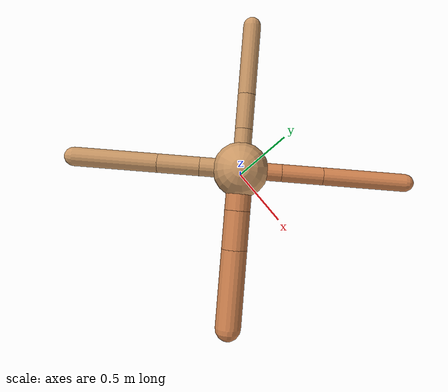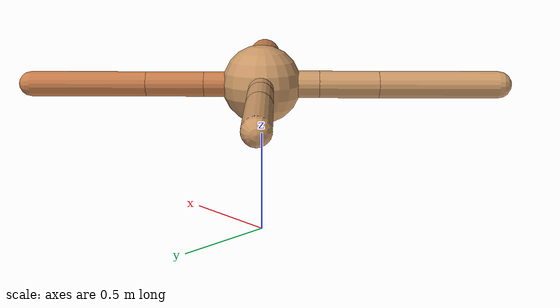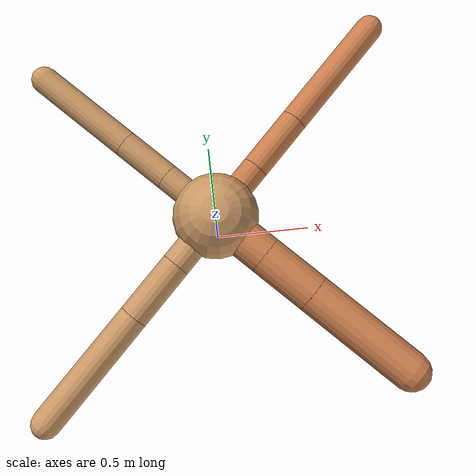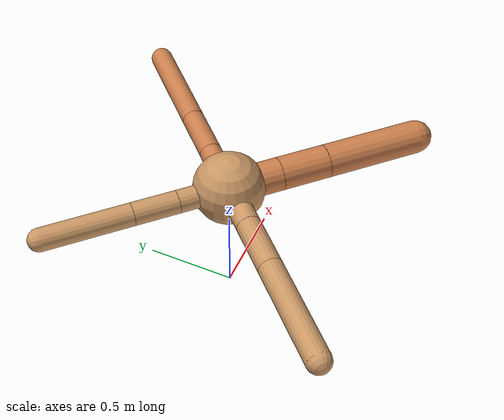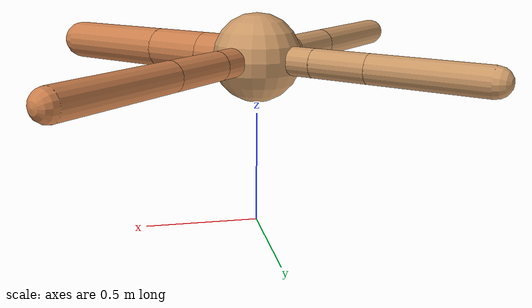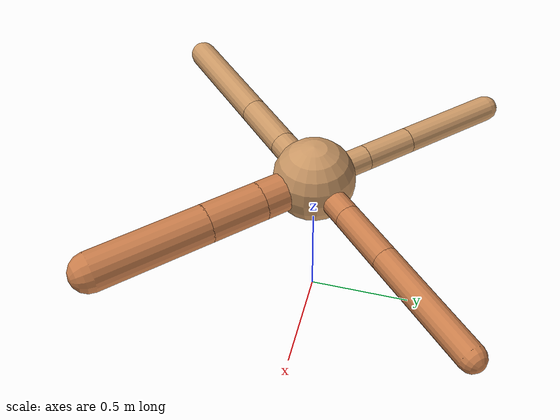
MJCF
<?xml version="1.0" ?>
<mujoco model="ant">

	<compiler angle="degree" coordinate="local" inertiafromgeom="true"/>

	<option integrator="RK4" timestep="0.01"/>

	<custom>

		<numeric data="0.0 0.0 0.55 1.0 0.0 0.0 0.0 0.0 1.0 0.0 -1.0 0.0 -1.0 0.0 1.0" name="init_qpos"/>

	</custom>

	<default>

		<joint armature="1" damping="1" limited="true"/>

		<geom conaffinity="0" condim="3" density="5.0" friction="1.5 0.1 0.1" margin="0.01" rgba="0.8 0.6 0.4 1"/>

	</default>

	<worldbody>

		<body name="torso" pos="0 0 0.75">

			<geom name="torso_geom" pos="0 0 0" size="0.19410023894645748" type="sphere"/>

			<!--joint armature="0" damping="0" limited="false" margin="0.01" name="root" pos="0 0 0" type="free"/-->

			<body name="front_left_leg" pos="0 0 0">

				<geom fromto="0 0 0 0.2 0.2 0" name="aux_1_geom" size="0.06112365463276359" type="capsule" rgba=".8 .5 .3 1"/>

				<body name="aux_1" pos="0.2 0.2 0">

					<joint axis="0 0 1" name="hip_1" pos="0.0 0.0 0.0" range="-40 40" type="hinge"/>

					<geom fromto="0 0 0 0.20089148227381226 0.20089148227381226 0" name="left_leg_geom" size="0.06112365463276359" type="capsule" rgba=".8 .5 .3 1"/>

					<body pos="0.20089148227381226 0.20089148227381226 0" name="front_left_foot">

						<joint axis="-1 1 0" name="ankle_1" pos="0.0 0.0 0.0" range="30 100" type="hinge"/>

						<geom fromto="0 0 0 0.4017829645476245 0.4017829645476245 0" name="left_ankle_geom" size="0.06112365463276359" type="capsule" rgba=".8 .5 .3 1"/>

					</body>

				</body>

			</body>

			<body name="front_right_leg" pos="0 0 0">

				<geom fromto="0 0 0 -0.2 0.2 0" name="aux_2_geom" size="0.061479885693870355" type="capsule"/>

				<body name="aux_2" pos="-0.2 0.2 0">

					<joint axis="0 0 1" name="hip_2" pos="0.0 0.0 0.0" range="-40 40" type="hinge"/>

					<geom fromto="0 0 0 -0.1719230227812848 0.1719230227812848 0" name="right_leg_geom" size="0.061479885693870355" type="capsule"/>

					<body pos="-0.1719230227812848 0.1719230227812848 0" name="front_right_foot">

						<joint axis="1 1 0" name="ankle_2" pos="0.0 0.0 0.0" range="-100 -30" type="hinge"/>

						<geom fromto="0 0 0 -0.3438460455625696 0.3438460455625696 0" name="right_ankle_geom" size="0.061479885693870355" type="capsule"/>

					</body>

				</body>

			</body>

			<body name="left_back_leg" pos="0 0 0">

				<geom fromto="0 0 0 -0.2 -0.2 0" name="aux_3_geom" size="0.06624818005091779" type="capsule"/>

				<body name="aux_3" pos="-0.2 -0.2 0">

					<joint axis="0 0 1" name="hip_3" pos="0.0 0.0 0.0" range="-40 40" type="hinge"/>

					<geom fromto="0 0 0 -0.20604382613693295 -0.20604382613693295 0" name="back_leg_geom" size="0.06624818005091779" type="capsule"/>

					<body pos="-0.20604382613693295 -0.20604382613693295 0" name="left_back_foot">

						<joint axis="-1 1 0" name="ankle_3" pos="0.0 0.0 0.0" range="-100 -30" type="hinge"/>

						<geom fromto="0 0 0 -0.4120876522738659 -0.4120876522738659 0" name="third_ankle_geom" size="0.06624818005091779" type="capsule"/>

					</body>

				</body>

			</body>

			<body name="right_back_leg" pos="0 0 0">

				<geom fromto="0 0 0 0.2 -0.2 0" name="aux_4_geom" size="0.08973043057097528" type="capsule" rgba=".8 .5 .3 1"/>

				<body name="aux_4" pos="0.2 -0.2 0">

					<joint axis="0 0 1" name="hip_4" pos="0.0 0.0 0.0" range="-40 40" type="hinge"/>

					<geom fromto="0 0 0 0.18952130650705704 -0.18952130650705704 0" name="rightback_leg_geom" size="0.08973043057097528" type="capsule" rgba=".8 .5 .3 1"/>

					<body pos="0.18952130650705704 -0.18952130650705704 0" name="right_back_foot">

						<joint axis="1 1 0" name="ankle_4" pos="0.0 0.0 0.0" range="30 100" type="hinge"/>

						<geom fromto="0 0 0 0.37904261301411407 -0.37904261301411407 0" name="fourth_ankle_geom" size="0.08973043057097528" type="capsule" rgba=".8 .5 .3 1"/>

					</body>

				</body>

			</body>

		</body>

	</worldbody>

	<actuator>

		<motor ctrllimited="true" ctrlrange="-1.0 1.0" joint="hip_4" gear="150"/>

		<motor ctrllimited="true" ctrlrange="-1.0 1.0" joint="ankle_4" gear="150"/>

		<motor ctrllimited="true" ctrlrange="-1.0 1.0" joint="hip_1" gear="150"/>

		<motor ctrllimited="true" ctrlrange="-1.0 1.0" joint="ankle_1" gear="150"/>

		<motor ctrllimited="true" ctrlrange="-1.0 1.0" joint="hip_2" gear="150"/>

		<motor ctrllimited="true" ctrlrange="-1.0 1.0" joint="ankle_2" gear="150"/>

		<motor ctrllimited="true" ctrlrange="-1.0 1.0" joint="hip_3" gear="150"/>

		<motor ctrllimited="true" ctrlrange="-1.0 1.0" joint="ankle_3" gear="150"/>

	</actuator>

</mujoco>
